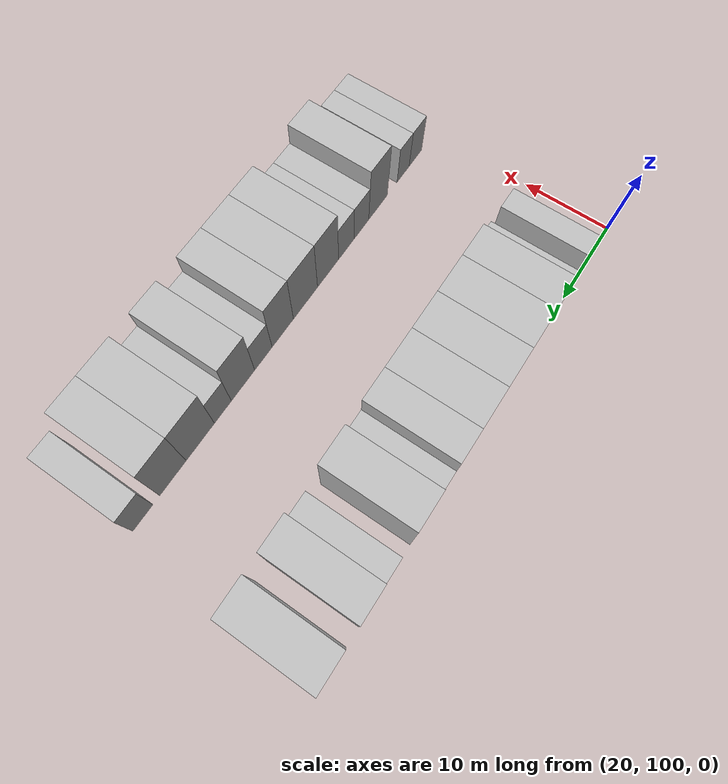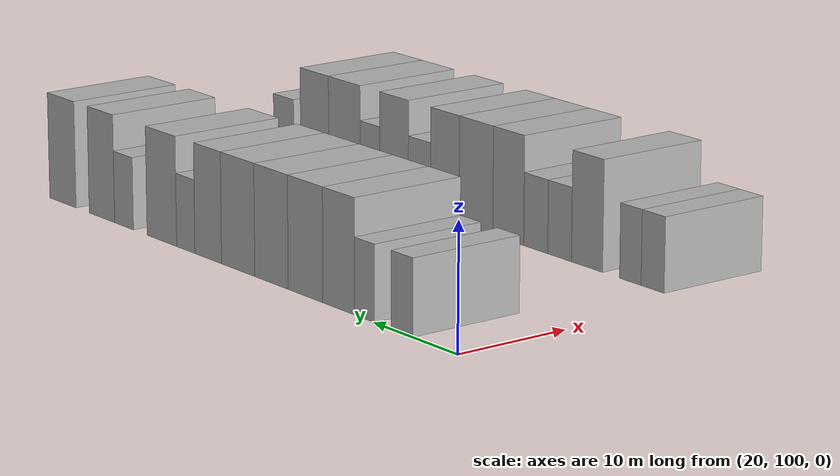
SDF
<sdf version="1.6">
 <world name="default">
  <model name="building_81">
   <static>1</static>
   <pose>25.0000 106.6030 0 0.000000 0.000000 0.000000</pose>
   <link name="link">
    <pose>0 0 3.00 0 0 0</pose>
    <collision name="collision"><geometry><box><size>10.0000 2.6079 6.0000</size></box></geometry></collision>
    <visual name="visual">
     <cast_shadows>0</cast_shadows>
     <geometry><box><size>10.0000 2.6079 6.0000</size></box></geometry>
     <material>
      <script>
       <uri>model://HANNAS_wall/materials/scripts</uri>
       <uri>model://HANNAS_wall/materials/textures</uri>
       <name>vrc/HANNAS_wall</name>
      </script>
     </material>
    </visual>
   </link>
  </model>
  <model name="building_82">
   <static>1</static>
   <pose>25.0000 111.1408 0 0.000000 0.000000 0.000000</pose>
   <link name="link">
    <pose>0 0 3.00 0 0 0</pose>
    <collision name="collision"><geometry><box><size>10.0000 2.4676 6.0000</size></box></geometry></collision>
    <visual name="visual">
     <cast_shadows>0</cast_shadows>
     <geometry><box><size>10.0000 2.4676 6.0000</size></box></geometry>
     <material>
      <script>
       <uri>model://HANNAS_wall/materials/scripts</uri>
       <uri>model://HANNAS_wall/materials/textures</uri>
       <name>vrc/HANNAS_wall</name>
      </script>
     </material>
    </visual>
   </link>
  </model>
  <model name="building_83">
   <static>1</static>
   <pose>25.0000 114.3430 0 0.000000 0.000000 0.000000</pose>
   <link name="link">
    <pose>0 0 4.50 0 0 0</pose>
    <collision name="collision"><geometry><box><size>10.0000 3.9369 9.0000</size></box></geometry></collision>
    <visual name="visual">
     <cast_shadows>0</cast_shadows>
     <geometry><box><size>10.0000 3.9369 9.0000</size></box></geometry>
     <material>
      <script>
       <uri>model://HANNAS_wall/materials/scripts</uri>
       <uri>model://HANNAS_wall/materials/textures</uri>
       <name>vrc/HANNAS_wall</name>
      </script>
     </material>
    </visual>
   </link>
  </model>
  <model name="building_84">
   <static>1</static>
   <pose>25.0000 118.5405 0 0.000000 0.000000 0.000000</pose>
   <link name="link">
    <pose>0 0 4.50 0 0 0</pose>
    <collision name="collision"><geometry><box><size>10.0000 4.4580 9.0000</size></box></geometry></collision>
    <visual name="visual">
     <cast_shadows>0</cast_shadows>
     <geometry><box><size>10.0000 4.4580 9.0000</size></box></geometry>
     <material>
      <script>
       <uri>model://HANNAS_wall/materials/scripts</uri>
       <uri>model://HANNAS_wall/materials/textures</uri>
       <name>vrc/HANNAS_wall</name>
      </script>
     </material>
    </visual>
   </link>
  </model>
  <model name="building_85">
   <static>1</static>
   <pose>25.0000 122.9615 0 0.000000 0.000000 0.000000</pose>
   <link name="link">
    <pose>0 0 4.50 0 0 0</pose>
    <collision name="collision"><geometry><box><size>10.0000 4.3841 9.0000</size></box></geometry></collision>
    <visual name="visual">
     <cast_shadows>0</cast_shadows>
     <geometry><box><size>10.0000 4.3841 9.0000</size></box></geometry>
     <material>
      <script>
       <uri>model://HANNAS_wall/materials/scripts</uri>
       <uri>model://HANNAS_wall/materials/textures</uri>
       <name>vrc/HANNAS_wall</name>
      </script>
     </material>
    </visual>
   </link>
  </model>
  <model name="building_86">
   <static>1</static>
   <pose>25.0000 127.3989 0 0.000000 0.000000 0.000000</pose>
   <link name="link">
    <pose>0 0 4.50 0 0 0</pose>
    <collision name="collision"><geometry><box><size>10.0000 4.4908 9.0000</size></box></geometry></collision>
    <visual name="visual">
     <cast_shadows>0</cast_shadows>
     <geometry><box><size>10.0000 4.4908 9.0000</size></box></geometry>
     <material>
      <script>
       <uri>model://HANNAS_wall/materials/scripts</uri>
       <uri>model://HANNAS_wall/materials/textures</uri>
       <name>vrc/HANNAS_wall</name>
      </script>
     </material>
    </visual>
   </link>
  </model>
  <model name="building_87">
   <static>1</static>
   <pose>25.0000 131.4726 0 0.000000 0.000000 0.000000</pose>
   <link name="link">
    <pose>0 0 4.50 0 0 0</pose>
    <collision name="collision"><geometry><box><size>10.0000 3.6566 9.0000</size></box></geometry></collision>
    <visual name="visual">
     <cast_shadows>0</cast_shadows>
     <geometry><box><size>10.0000 3.6566 9.0000</size></box></geometry>
     <material>
      <script>
       <uri>model://HANNAS_wall/materials/scripts</uri>
       <uri>model://HANNAS_wall/materials/textures</uri>
       <name>vrc/HANNAS_wall</name>
      </script>
     </material>
    </visual>
   </link>
  </model>
  <model name="building_88">
   <static>1</static>
   <pose>25.0000 134.5861 0 0.000000 0.000000 0.000000</pose>
   <link name="link">
    <pose>0 0 3.00 0 0 0</pose>
    <collision name="collision"><geometry><box><size>10.0000 2.5705 6.0000</size></box></geometry></collision>
    <visual name="visual">
     <cast_shadows>0</cast_shadows>
     <geometry><box><size>10.0000 2.5705 6.0000</size></box></geometry>
     <material>
      <script>
       <uri>model://HANNAS_wall/materials/scripts</uri>
       <uri>model://HANNAS_wall/materials/textures</uri>
       <name>vrc/HANNAS_wall</name>
      </script>
     </material>
    </visual>
   </link>
  </model>
  <model name="building_89">
   <static>1</static>
   <pose>25.0000 137.9731 0 0.000000 0.000000 0.000000</pose>
   <link name="link">
    <pose>0 0 4.50 0 0 0</pose>
    <collision name="collision"><geometry><box><size>10.0000 4.2035 9.0000</size></box></geometry></collision>
    <visual name="visual">
     <cast_shadows>0</cast_shadows>
     <geometry><box><size>10.0000 4.2035 9.0000</size></box></geometry>
     <material>
      <script>
       <uri>model://HANNAS_wall/materials/scripts</uri>
       <uri>model://HANNAS_wall/materials/textures</uri>
       <name>vrc/HANNAS_wall</name>
      </script>
     </material>
    </visual>
   </link>
  </model>
  <model name="building_90">
   <static>1</static>
   <pose>25.0000 143.4472 0 0.000000 0.000000 0.000000</pose>
   <link name="link">
    <pose>0 0 3.00 0 0 0</pose>
    <collision name="collision"><geometry><box><size>10.0000 2.7448 6.0000</size></box></geometry></collision>
    <visual name="visual">
     <cast_shadows>0</cast_shadows>
     <geometry><box><size>10.0000 2.7448 6.0000</size></box></geometry>
     <material>
      <script>
       <uri>model://HANNAS_wall/materials/scripts</uri>
       <uri>model://HANNAS_wall/materials/textures</uri>
       <name>vrc/HANNAS_wall</name>
      </script>
     </material>
    </visual>
   </link>
  </model>
  <model name="building_91">
   <static>1</static>
   <pose>25.0000 146.7209 0 0.000000 0.000000 0.000000</pose>
   <link name="link">
    <pose>0 0 4.50 0 0 0</pose>
    <collision name="collision"><geometry><box><size>10.0000 3.8027 9.0000</size></box></geometry></collision>
    <visual name="visual">
     <cast_shadows>0</cast_shadows>
     <geometry><box><size>10.0000 3.8027 9.0000</size></box></geometry>
     <material>
      <script>
       <uri>model://HANNAS_wall/materials/scripts</uri>
       <uri>model://HANNAS_wall/materials/textures</uri>
       <name>vrc/HANNAS_wall</name>
      </script>
     </material>
    </visual>
   </link>
  </model>
  <model name="building_92">
   <static>1</static>
   <pose>25.0000 152.6451 0 0.000000 0.000000 0.000000</pose>
   <link name="link">
    <pose>0 0 4.50 0 0 0</pose>
    <collision name="collision"><geometry><box><size>10.0000 4.0456 9.0000</size></box></geometry></collision>
    <visual name="visual">
     <cast_shadows>0</cast_shadows>
     <geometry><box><size>10.0000 4.0456 9.0000</size></box></geometry>
     <material>
      <script>
       <uri>model://HANNAS_wall/materials/scripts</uri>
       <uri>model://HANNAS_wall/materials/textures</uri>
       <name>vrc/HANNAS_wall</name>
      </script>
     </material>
    </visual>
   </link>
  </model>
  <model name="building_182">
   <static>1</static>
   <pose>47.0000 103.9789 0 0.000000 0.000000 0.000000</pose>
   <link name="link">
    <pose>0 0 3.00 0 0 0</pose>
    <collision name="collision"><geometry><box><size>10.0000 2.6396 6.0000</size></box></geometry></collision>
    <visual name="visual">
     <cast_shadows>0</cast_shadows>
     <geometry><box><size>10.0000 2.6396 6.0000</size></box></geometry>
     <material>
      <script>
       <uri>model://HANNAS_wall/materials/scripts</uri>
       <uri>model://HANNAS_wall/materials/textures</uri>
       <name>vrc/HANNAS_wall</name>
      </script>
     </material>
    </visual>
   </link>
  </model>
  <model name="building_183">
   <static>1</static>
   <pose>47.0000 106.5513 0 0.000000 0.000000 0.000000</pose>
   <link name="link">
    <pose>0 0 3.00 0 0 0</pose>
    <collision name="collision"><geometry><box><size>10.0000 2.5052 6.0000</size></box></geometry></collision>
    <visual name="visual">
     <cast_shadows>0</cast_shadows>
     <geometry><box><size>10.0000 2.5052 6.0000</size></box></geometry>
     <material>
      <script>
       <uri>model://HANNAS_wall/materials/scripts</uri>
       <uri>model://HANNAS_wall/materials/textures</uri>
       <name>vrc/HANNAS_wall</name>
      </script>
     </material>
    </visual>
   </link>
  </model>
  <model name="building_184">
   <static>1</static>
   <pose>47.0000 111.6657 0 0.000000 0.000000 0.000000</pose>
   <link name="link">
    <pose>0 0 4.50 0 0 0</pose>
    <collision name="collision"><geometry><box><size>10.0000 3.7236 9.0000</size></box></geometry></collision>
    <visual name="visual">
     <cast_shadows>0</cast_shadows>
     <geometry><box><size>10.0000 3.7236 9.0000</size></box></geometry>
     <material>
      <script>
       <uri>model://HANNAS_wall/materials/scripts</uri>
       <uri>model://HANNAS_wall/materials/textures</uri>
       <name>vrc/HANNAS_wall</name>
      </script>
     </material>
    </visual>
   </link>
  </model>
  <model name="building_185">
   <static>1</static>
   <pose>47.0000 114.9691 0 0.000000 0.000000 0.000000</pose>
   <link name="link">
    <pose>0 0 3.00 0 0 0</pose>
    <collision name="collision"><geometry><box><size>10.0000 2.8833 6.0000</size></box></geometry></collision>
    <visual name="visual">
     <cast_shadows>0</cast_shadows>
     <geometry><box><size>10.0000 2.8833 6.0000</size></box></geometry>
     <material>
      <script>
       <uri>model://HANNAS_wall/materials/scripts</uri>
       <uri>model://HANNAS_wall/materials/textures</uri>
       <name>vrc/HANNAS_wall</name>
      </script>
     </material>
    </visual>
   </link>
  </model>
  <model name="building_186">
   <static>1</static>
   <pose>47.0000 117.8947 0 0.000000 0.000000 0.000000</pose>
   <link name="link">
    <pose>0 0 3.00 0 0 0</pose>
    <collision name="collision"><geometry><box><size>10.0000 2.9679 6.0000</size></box></geometry></collision>
    <visual name="visual">
     <cast_shadows>0</cast_shadows>
     <geometry><box><size>10.0000 2.9679 6.0000</size></box></geometry>
     <material>
      <script>
       <uri>model://HANNAS_wall/materials/scripts</uri>
       <uri>model://HANNAS_wall/materials/textures</uri>
       <name>vrc/HANNAS_wall</name>
      </script>
     </material>
    </visual>
   </link>
  </model>
  <model name="building_187">
   <static>1</static>
   <pose>47.0000 121.3328 0 0.000000 0.000000 0.000000</pose>
   <link name="link">
    <pose>0 0 4.50 0 0 0</pose>
    <collision name="collision"><geometry><box><size>10.0000 3.9082 9.0000</size></box></geometry></collision>
    <visual name="visual">
     <cast_shadows>0</cast_shadows>
     <geometry><box><size>10.0000 3.9082 9.0000</size></box></geometry>
     <material>
      <script>
       <uri>model://HANNAS_wall/materials/scripts</uri>
       <uri>model://HANNAS_wall/materials/textures</uri>
       <name>vrc/HANNAS_wall</name>
      </script>
     </material>
    </visual>
   </link>
  </model>
  <model name="building_188">
   <static>1</static>
   <pose>47.0000 125.4684 0 0.000000 0.000000 0.000000</pose>
   <link name="link">
    <pose>0 0 4.50 0 0 0</pose>
    <collision name="collision"><geometry><box><size>10.0000 4.3631 9.0000</size></box></geometry></collision>
    <visual name="visual">
     <cast_shadows>0</cast_shadows>
     <geometry><box><size>10.0000 4.3631 9.0000</size></box></geometry>
     <material>
      <script>
       <uri>model://HANNAS_wall/materials/scripts</uri>
       <uri>model://HANNAS_wall/materials/textures</uri>
       <name>vrc/HANNAS_wall</name>
      </script>
     </material>
    </visual>
   </link>
  </model>
  <model name="building_189">
   <static>1</static>
   <pose>47.0000 129.5197 0 0.000000 0.000000 0.000000</pose>
   <link name="link">
    <pose>0 0 4.50 0 0 0</pose>
    <collision name="collision"><geometry><box><size>10.0000 3.7394 9.0000</size></box></geometry></collision>
    <visual name="visual">
     <cast_shadows>0</cast_shadows>
     <geometry><box><size>10.0000 3.7394 9.0000</size></box></geometry>
     <material>
      <script>
       <uri>model://HANNAS_wall/materials/scripts</uri>
       <uri>model://HANNAS_wall/materials/textures</uri>
       <name>vrc/HANNAS_wall</name>
      </script>
     </material>
    </visual>
   </link>
  </model>
  <model name="building_190">
   <static>1</static>
   <pose>47.0000 132.8736 0 0.000000 0.000000 0.000000</pose>
   <link name="link">
    <pose>0 0 3.00 0 0 0</pose>
    <collision name="collision"><geometry><box><size>10.0000 2.9685 6.0000</size></box></geometry></collision>
    <visual name="visual">
     <cast_shadows>0</cast_shadows>
     <geometry><box><size>10.0000 2.9685 6.0000</size></box></geometry>
     <material>
      <script>
       <uri>model://HANNAS_wall/materials/scripts</uri>
       <uri>model://HANNAS_wall/materials/textures</uri>
       <name>vrc/HANNAS_wall</name>
      </script>
     </material>
    </visual>
   </link>
  </model>
  <model name="building_191">
   <static>1</static>
   <pose>47.0000 136.3010 0 0.000000 0.000000 0.000000</pose>
   <link name="link">
    <pose>0 0 4.50 0 0 0</pose>
    <collision name="collision"><geometry><box><size>10.0000 3.8862 9.0000</size></box></geometry></collision>
    <visual name="visual">
     <cast_shadows>0</cast_shadows>
     <geometry><box><size>10.0000 3.8862 9.0000</size></box></geometry>
     <material>
      <script>
       <uri>model://HANNAS_wall/materials/scripts</uri>
       <uri>model://HANNAS_wall/materials/textures</uri>
       <name>vrc/HANNAS_wall</name>
      </script>
     </material>
    </visual>
   </link>
  </model>
  <model name="building_192">
   <static>1</static>
   <pose>47.0000 139.6095 0 0.000000 0.000000 0.000000</pose>
   <link name="link">
    <pose>0 0 3.00 0 0 0</pose>
    <collision name="collision"><geometry><box><size>10.0000 2.7309 6.0000</size></box></geometry></collision>
    <visual name="visual">
     <cast_shadows>0</cast_shadows>
     <geometry><box><size>10.0000 2.7309 6.0000</size></box></geometry>
     <material>
      <script>
       <uri>model://HANNAS_wall/materials/scripts</uri>
       <uri>model://HANNAS_wall/materials/textures</uri>
       <name>vrc/HANNAS_wall</name>
      </script>
     </material>
    </visual>
   </link>
  </model>
  <model name="building_193">
   <static>1</static>
   <pose>47.0000 143.1960 0 0.000000 0.000000 0.000000</pose>
   <link name="link">
    <pose>0 0 4.50 0 0 0</pose>
    <collision name="collision"><geometry><box><size>10.0000 4.4422 9.0000</size></box></geometry></collision>
    <visual name="visual">
     <cast_shadows>0</cast_shadows>
     <geometry><box><size>10.0000 4.4422 9.0000</size></box></geometry>
     <material>
      <script>
       <uri>model://HANNAS_wall/materials/scripts</uri>
       <uri>model://HANNAS_wall/materials/textures</uri>
       <name>vrc/HANNAS_wall</name>
      </script>
     </material>
    </visual>
   </link>
  </model>
  <model name="building_194">
   <static>1</static>
   <pose>47.0000 147.4313 0 0.000000 0.000000 0.000000</pose>
   <link name="link">
    <pose>0 0 4.50 0 0 0</pose>
    <collision name="collision"><geometry><box><size>10.0000 4.0283 9.0000</size></box></geometry></collision>
    <visual name="visual">
     <cast_shadows>0</cast_shadows>
     <geometry><box><size>10.0000 4.0283 9.0000</size></box></geometry>
     <material>
      <script>
       <uri>model://HANNAS_wall/materials/scripts</uri>
       <uri>model://HANNAS_wall/materials/textures</uri>
       <name>vrc/HANNAS_wall</name>
      </script>
     </material>
    </visual>
   </link>
  </model>
  <model name="building_195">
   <static>1</static>
   <pose>47.0000 151.9194 0 0.000000 0.000000 0.000000</pose>
   <link name="link">
    <pose>0 0 3.00 0 0 0</pose>
    <collision name="collision"><geometry><box><size>10.0000 2.9479 6.0000</size></box></geometry></collision>
    <visual name="visual">
     <cast_shadows>0</cast_shadows>
     <geometry><box><size>10.0000 2.9479 6.0000</size></box></geometry>
     <material>
      <script>
       <uri>model://HANNAS_wall/materials/scripts</uri>
       <uri>model://HANNAS_wall/materials/textures</uri>
       <name>vrc/HANNAS_wall</name>
      </script>
     </material>
    </visual>
   </link>
  </model>
 </world>
</sdf>
